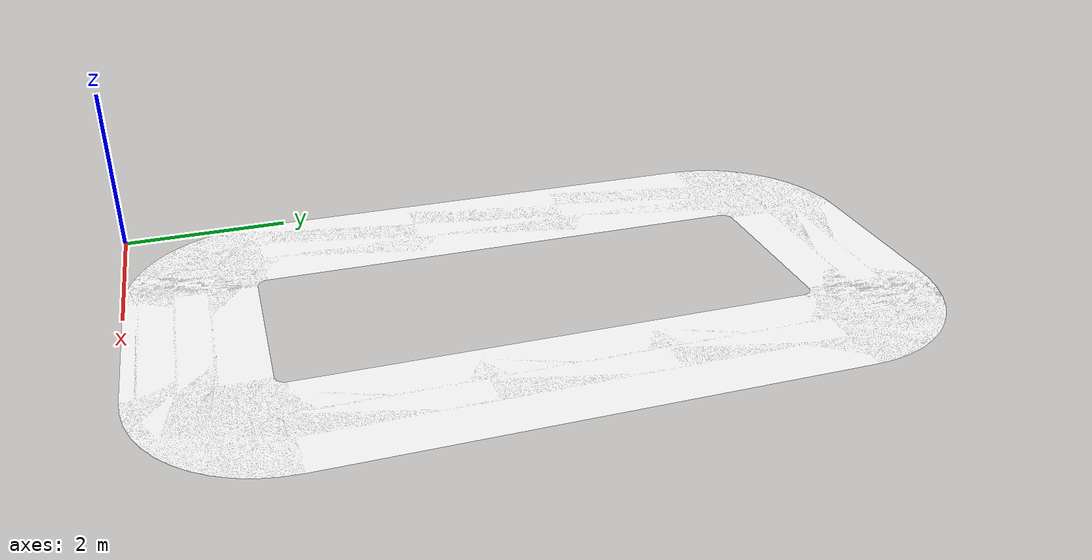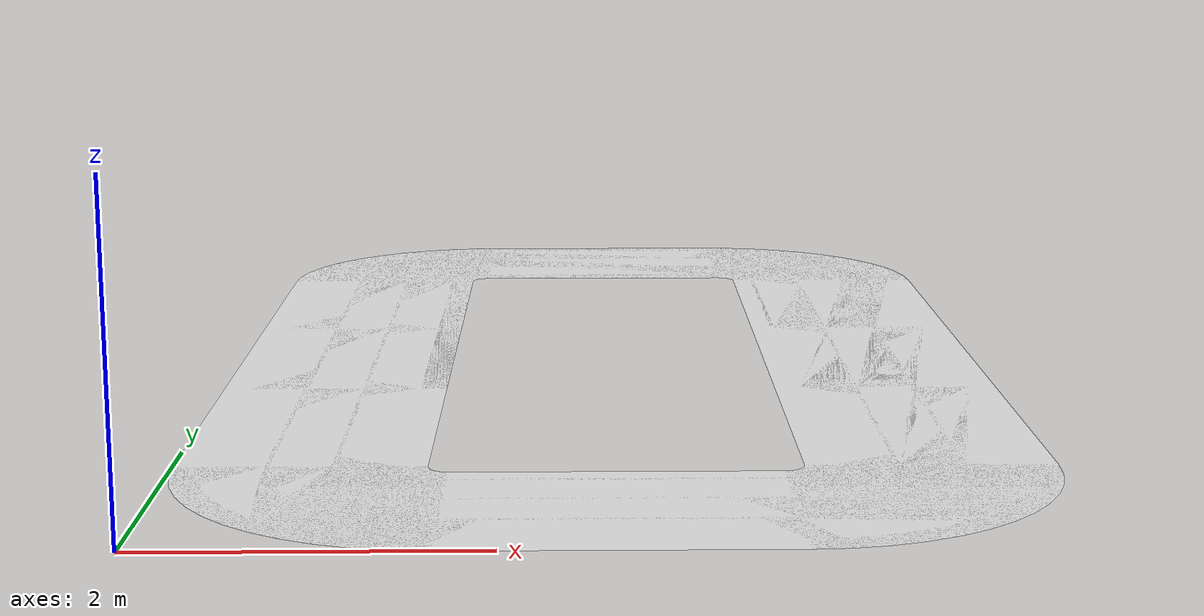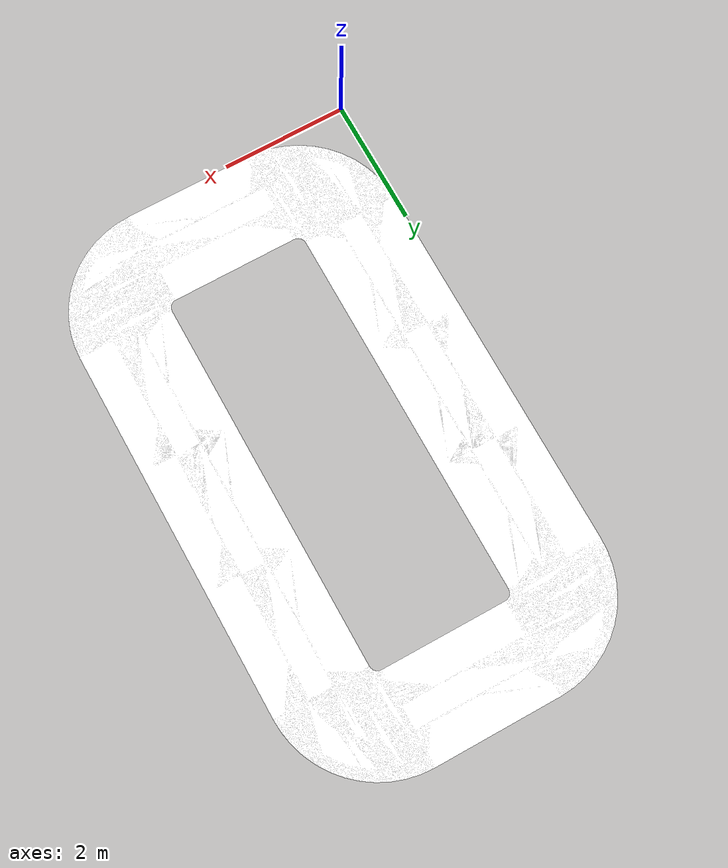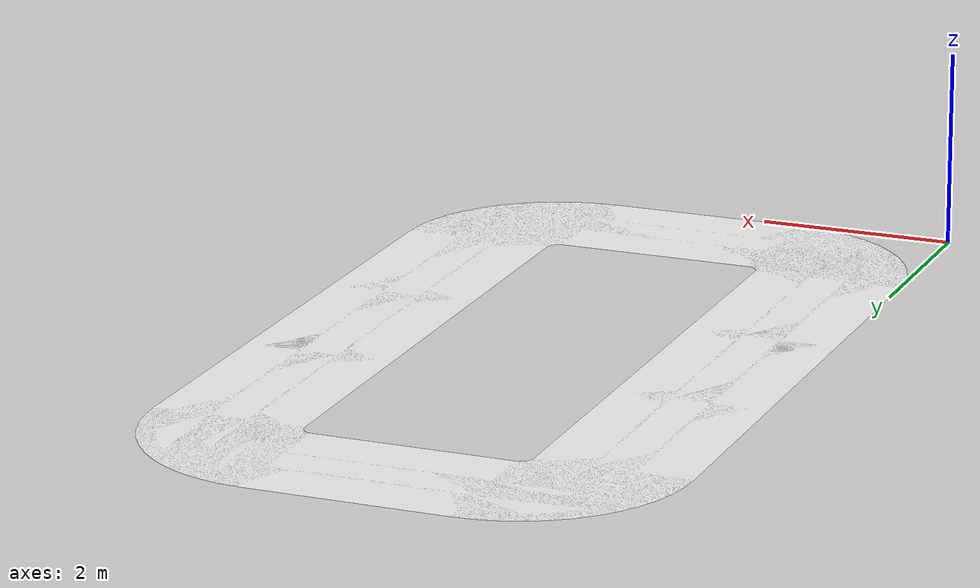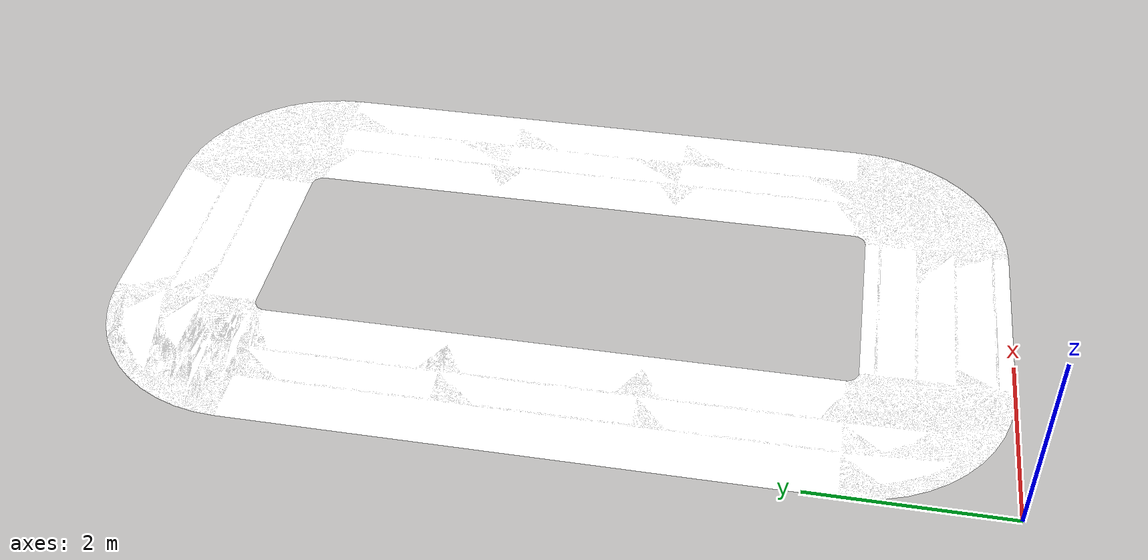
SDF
<?xml version="1.0" ?>
<sdf version="1.4">
  <model name="asphalt_plane">
    <static>true</static>
    <link name="link">
      <collision name='collision'>
          <geometry>
            <plane>
              <normal>0 0 1</normal>
              <size>5.32 9.32</size>
            </plane>
          </geometry>
          <surface>
            <friction>
              <ode>
                <mu>100</mu>
                <mu2>50</mu2>
              </ode>
            </friction>
            <bounce/>
            <contact>
              <ode/>
            </contact>
          </surface>
        </collision>
      <visual name="visual">
        <geometry>
          <mesh>
	         <uri>model://pista_triple_carril/meshes/pista_triple_carril.dae</uri>
         </mesh>
        </geometry>
      </visual>
      <velocity_decay>
          <linear>0</linear>
          <angular>0</angular>
      </velocity_decay>
      <self_collide>0</self_collide>
      <kinematic>0</kinematic>
      <gravity>1</gravity>
    </link>
  </model>
</sdf>
